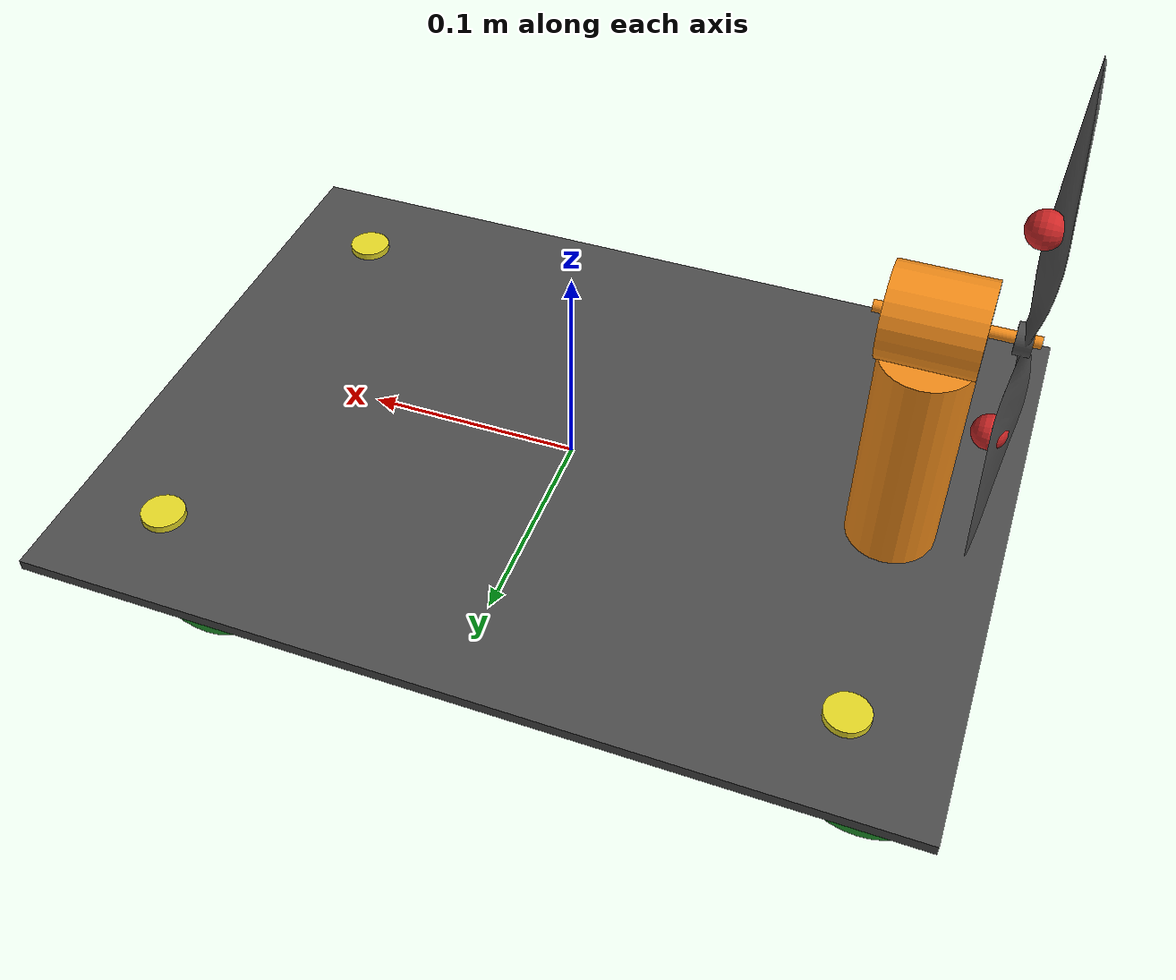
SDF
<sdf version='1.7'>
<model name='fan_car_ardupilot'>

    <include>
        <pose>0 0 0 0 0 0</pose>
        <uri>model://fan_car</uri>
    </include>

    <!--  Using values from iris_with_standoffs_demo -->
    <plugin name="prop_blade_1_liftdrag" filename="libLiftDragPlugin.so">
        <a0>0.3</a0>
        <alpha_stall>1.4</alpha_stall>
        <cla>4.2500</cla>
        <cda>0.10</cda>
        <cma>0.00</cma>
        <cla_stall>-0.025</cla_stall>
        <cda_stall>0.0</cda_stall>
        <cma_stall>0.0</cma_stall>
        <area>0.002</area>
        <air_density>1.2041</air_density>
        <cp>0.084 0 0</cp>
        <forward>0 1 0</forward>
        <upward>0 0 1</upward>
        <link_name>fan_car_ardupilot::fan_car::back_motor_link</link_name>
    </plugin>
    <plugin name="prop_blade_2_liftdrag" filename="libLiftDragPlugin.so">
        <a0>0.3</a0>
        <alpha_stall>1.4</alpha_stall>
        <cla>4.2500</cla>
        <cda>0.10</cda>
        <cma>0.00</cma>
        <cla_stall>-0.025</cla_stall>
        <cda_stall>0.0</cda_stall>
        <cma_stall>0.0</cma_stall>
        <area>0.002</area>
        <air_density>1.2041</air_density>
        <cp>-0.084 0 0</cp>
        <forward>0 -1 0</forward>
        <upward>0 0 1</upward>
        <link_name>fan_car_ardupilot::fan_car::back_motor_link</link_name>
    </plugin>

    <plugin name="ardupilot_plugin" filename="libArduPilotPlugin.so">
        <fdm_addr>127.0.0.1</fdm_addr>
        <fdm_port_in>9002</fdm_port_in>
        <connectionTimeoutMaxCount>5</connectionTimeoutMaxCount>
        <modelXYZToAirplaneXForwardZDown>0 0 0 3.141593 0 0</modelXYZToAirplaneXForwardZDown>
        <gazeboXYZToNED>0 0 0 3.141593 0 0</gazeboXYZToNED>
        <imuName>fan_car_ardupilot::imu_link::imu_sensor</imuName>

        <!-- Control / channels -->

        <!--
            SERVO1_FUNCTION 26 (Ground Steering)
            SERVO1_MIN      1000
            SERVO1_MAX      2000
            SERVO1_TRIM     1500
        -->
        <control channel="0">
            <jointName>fan_car_ardupilot::fan_car::back_steer_rotor_joint</jointName>
            <useForce>1</useForce>
            <multiplier>3.141592653</multiplier>
            <offset>-0.5</offset>
            <servo_min>1000</servo_min>
            <servo_max>2000</servo_max>
            <type>POSITION</type>
            <p_gain>10</p_gain>
            <i_gain>0.1</i_gain>
            <d_gain>0.02</d_gain>
            <i_max>1</i_max>
            <i_min>-1</i_min>
            <cmd_max>100.0</cmd_max>
            <cmd_min>-100.0</cmd_min>
        </control>

        <!--
            SERVO3_FUNCTION 70 (Throttle)
            SERVO3_MIN      1000
            SERVO3_MAX      2000
            SERVO3_TRIM     1000
        -->
        <control channel="2">
            <jointName>fan_car_ardupilot::fan_car::back_motor_joint</jointName>
            <useForce>1</useForce>
            <multiplier>-800</multiplier>
            <offset>0</offset>
            <servo_min>1000</servo_min>
            <servo_max>2000</servo_max>
            <type>VELOCITY</type>
            <p_gain>0.007</p_gain>
            <i_gain>0.005</i_gain>
            <d_gain>0.0</d_gain>
            <i_max>0.1</i_max>
            <i_min>-0.1</i_min>
            <cmd_max>10.0</cmd_max>
            <cmd_min>-10.0</cmd_min>
        </control>
    </plugin>

    <link name='imu_link'>
        <inertial>
            <mass>0.01</mass>
            <inertia>
                <ixx>1.66667E-07</ixx>
                <ixy>0</ixy>
                <ixz>0</ixz>
                <iyy>1.66667E-07</iyy>
                <iyz>0</iyz>
                <izz>1.66667E-07</izz>
            </inertia>
        </inertial>
        <sensor name="imu_sensor" type="imu">
            <pose>0 0 0 3.141593 0 0</pose>
            <always_on>1</always_on>
            <update_rate>1000.0</update_rate>
        </sensor>
    </link>

    <joint name='imu_joint' type='revolute'>
        <child>imu_link</child>
        <parent>fan_car_ardupilot::fan_car::base_link</parent>
        <axis>
            <xyz>0 0 1</xyz>
            <limit>
                <lower>0</lower>
                <upper>0</upper>
            </limit>
        </axis>
    </joint>

</model>
</sdf>

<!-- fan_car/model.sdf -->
<sdf version='1.7'>
  <model name='fan_car'>
    <link name='base_link'>
      <inertial>
        <pose>0 0 0 0 -0 0</pose>
        <mass>1.25</mass>
        <inertia>
          <ixx>0.0093776</ixx>
          <ixy>0</ixy>
          <ixz>0</ixz>
          <iyy>0.0166693</iyy>
          <iyz>0</iyz>
          <izz>0.0260417</izz>
        </inertia>
      </inertial>
      <collision name='base_link_collision'>
        <pose>0 0 0 0 -0 0</pose>
        <geometry>
          <box>
            <size>0.4 0.3 0.005</size>
          </box>
        </geometry>
        <surface>
          <friction>
            <ode>
              <mu>1</mu>
              <mu2>1</mu2>
            </ode>
          </friction>
          <contact>
            <ode/>
          </contact>
        </surface>
      </collision>
      <visual name='base_link_visual'>
        <pose>0 0 0 0 -0 0</pose>
        <geometry>
          <box>
            <size>0.4 0.3 0.005</size>
          </box>
        </geometry>
        <material>
          <script>
            <name>Gazebo/DarkGray</name>
            <uri>file://media/materials/scripts/gazebo.material</uri>
          </script>
        </material>
      </visual>
      <gravity>1</gravity>
      <velocity_decay/>
    </link>
    <joint name='back_left_castor_joint' type='revolute'>
      <pose relative_to='base_link'>-0.155 0.105 0 0 -0 0</pose>
      <parent>base_link</parent>
      <child>back_left_castor_link</child>
      <axis>
        <xyz>0 0 1</xyz>
        <limit>
          <lower>-1e+16</lower>
          <upper>1e+16</upper>
        </limit>
        <dynamics>
          <damping>0.0001</damping>
          <friction>0.0001</friction>
          <spring_reference>0</spring_reference>
          <spring_stiffness>0</spring_stiffness>
        </dynamics>
      </axis>
      <physics>
        <ode>
          <limit>
            <cfm>0</cfm>
            <erp>0.2</erp>
          </limit>
        </ode>
      </physics>
    </joint>
    <link name='back_left_castor_link'>
      <pose relative_to='back_left_castor_joint'>0 0 0 0 -0 0</pose>
      <inertial>
        <pose>0 0 0 0 -0 0</pose>
        <mass>0.05</mass>
        <inertia>
          <ixx>1.85e-06</ixx>
          <ixy>0</ixy>
          <ixz>0</ixz>
          <iyy>1.85e-06</iyy>
          <iyz>0</iyz>
          <izz>2.5e-06</izz>
        </inertia>
      </inertial>
      <collision name='back_left_castor_link_collision'>
        <pose>0 0 0 0 -0 0</pose>
        <geometry>
          <cylinder>
            <length>0.012</length>
            <radius>0.01</radius>
          </cylinder>
        </geometry>
        <surface>
          <friction>
            <ode>
              <mu>1</mu>
              <mu2>1</mu2>
            </ode>
          </friction>
          <contact>
            <ode/>
          </contact>
        </surface>
      </collision>
      <visual name='back_left_castor_link_visual'>
        <pose>0 0 0 0 -0 0</pose>
        <geometry>
          <cylinder>
            <length>0.012</length>
            <radius>0.01</radius>
          </cylinder>
        </geometry>
        <material>
          <script>
            <name>Gazebo/Yellow</name>
            <uri>file://media/materials/scripts/gazebo.material</uri>
          </script>
        </material>
      </visual>
      <gravity>1</gravity>
      <velocity_decay/>
    </link>
    <joint name='back_left_wheel_joint' type='revolute'>
      <pose relative_to='back_left_castor_link'>-0.015 0 -0.037 -1.5708 0 0</pose>
      <parent>back_left_castor_link</parent>
      <child>back_left_castor_wheel_link</child>
      <axis>
        <xyz>0 0 1</xyz>
        <limit>
          <lower>-1e+16</lower>
          <upper>1e+16</upper>
        </limit>
        <dynamics>
          <damping>0.0001</damping>
          <friction>0.03</friction>
          <spring_reference>0</spring_reference>
          <spring_stiffness>0</spring_stiffness>
        </dynamics>
      </axis>
      <physics>
        <ode>
          <limit>
            <cfm>0</cfm>
            <erp>0.2</erp>
          </limit>
        </ode>
      </physics>
    </joint>
    <link name='back_left_castor_wheel_link'>
      <pose relative_to='back_left_wheel_joint'>0 0 0 0 -0 0</pose>
      <inertial>
        <pose>0 0 0 0 -0 0</pose>
        <mass>0.05</mass>
        <inertia>
          <ixx>9.47917e-06</ixx>
          <ixy>0</ixy>
          <ixz>0</ixz>
          <iyy>9.47917e-06</iyy>
          <iyz>0</iyz>
          <izz>1.5625e-05</izz>
        </inertia>
      </inertial>
      <collision name='back_left_castor_wheel_link_collision'>
        <pose>0 0 0 0 -0 0</pose>
        <geometry>
          <cylinder>
            <length>0.02</length>
            <radius>0.025</radius>
          </cylinder>
        </geometry>
        <surface>
          <friction>
            <ode>
              <mu>1</mu>
              <mu2>1</mu2>
            </ode>
          </friction>
          <contact>
            <ode/>
          </contact>
        </surface>
      </collision>
      <visual name='back_left_castor_wheel_link_visual'>
        <pose>0 0 0 0 -0 0</pose>
        <geometry>
          <cylinder>
            <length>0.02</length>
            <radius>0.025</radius>
          </cylinder>
        </geometry>
        <material>
          <script>
            <name>Gazebo/Green</name>
            <uri>file://media/materials/scripts/gazebo.material</uri>
          </script>
        </material>
      </visual>
      <gravity>1</gravity>
      <velocity_decay/>
    </link>
    <joint name='back_right_castor_joint' type='revolute'>
      <pose relative_to='base_link'>-0.155 -0.105 0 0 -0 0</pose>
      <parent>base_link</parent>
      <child>back_right_castor_link</child>
      <axis>
        <xyz>0 0 1</xyz>
        <limit>
          <lower>-1e+16</lower>
          <upper>1e+16</upper>
        </limit>
        <dynamics>
          <damping>0.0001</damping>
          <friction>0.0001</friction>
          <spring_reference>0</spring_reference>
          <spring_stiffness>0</spring_stiffness>
        </dynamics>
      </axis>
      <physics>
        <ode>
          <limit>
            <cfm>0</cfm>
            <erp>0.2</erp>
          </limit>
        </ode>
      </physics>
    </joint>
    <link name='back_right_castor_link'>
      <pose relative_to='back_right_castor_joint'>0 0 0 0 -0 0</pose>
      <inertial>
        <pose>0 0 0 0 -0 0</pose>
        <mass>0.05</mass>
        <inertia>
          <ixx>1.85e-06</ixx>
          <ixy>0</ixy>
          <ixz>0</ixz>
          <iyy>1.85e-06</iyy>
          <iyz>0</iyz>
          <izz>2.5e-06</izz>
        </inertia>
      </inertial>
      <collision name='back_right_castor_link_collision'>
        <pose>0 0 0 0 -0 0</pose>
        <geometry>
          <cylinder>
            <length>0.012</length>
            <radius>0.01</radius>
          </cylinder>
        </geometry>
        <surface>
          <friction>
            <ode>
              <mu>1</mu>
              <mu2>1</mu2>
            </ode>
          </friction>
          <contact>
            <ode/>
          </contact>
        </surface>
      </collision>
      <visual name='back_right_castor_link_visual'>
        <pose>0 0 0 0 -0 0</pose>
        <geometry>
          <cylinder>
            <length>0.012</length>
            <radius>0.01</radius>
          </cylinder>
        </geometry>
        <material>
          <script>
            <name>Gazebo/Yellow</name>
            <uri>file://media/materials/scripts/gazebo.material</uri>
          </script>
        </material>
      </visual>
      <gravity>1</gravity>
      <velocity_decay/>
    </link>
    <joint name='back_right_wheel_joint' type='revolute'>
      <pose relative_to='back_right_castor_link'>-0.015 0 -0.037 -1.5708 0 0</pose>
      <parent>back_right_castor_link</parent>
      <child>back_right_castor_wheel_link</child>
      <axis>
        <xyz>0 0 1</xyz>
        <limit>
          <lower>-1e+16</lower>
          <upper>1e+16</upper>
        </limit>
        <dynamics>
          <damping>0.0001</damping>
          <friction>0.03</friction>
          <spring_reference>0</spring_reference>
          <spring_stiffness>0</spring_stiffness>
        </dynamics>
      </axis>
      <physics>
        <ode>
          <limit>
            <cfm>0</cfm>
            <erp>0.2</erp>
          </limit>
        </ode>
      </physics>
    </joint>
    <link name='back_right_castor_wheel_link'>
      <pose relative_to='back_right_wheel_joint'>0 0 0 0 -0 0</pose>
      <inertial>
        <pose>0 0 0 0 -0 0</pose>
        <mass>0.05</mass>
        <inertia>
          <ixx>9.47917e-06</ixx>
          <ixy>0</ixy>
          <ixz>0</ixz>
          <iyy>9.47917e-06</iyy>
          <iyz>0</iyz>
          <izz>1.5625e-05</izz>
        </inertia>
      </inertial>
      <collision name='back_right_castor_wheel_link_collision'>
        <pose>0 0 0 0 -0 0</pose>
        <geometry>
          <cylinder>
            <length>0.02</length>
            <radius>0.025</radius>
          </cylinder>
        </geometry>
        <surface>
          <friction>
            <ode>
              <mu>1</mu>
              <mu2>1</mu2>
            </ode>
          </friction>
          <contact>
            <ode/>
          </contact>
        </surface>
      </collision>
      <visual name='back_right_castor_wheel_link_visual'>
        <pose>0 0 0 0 -0 0</pose>
        <geometry>
          <cylinder>
            <length>0.02</length>
            <radius>0.025</radius>
          </cylinder>
        </geometry>
        <material>
          <script>
            <name>Gazebo/Green</name>
            <uri>file://media/materials/scripts/gazebo.material</uri>
          </script>
        </material>
      </visual>
      <gravity>1</gravity>
      <velocity_decay/>
    </link>
    <joint name='back_steer_rotor_joint' type='revolute'>
      <pose relative_to='base_link'>-0.15 0 0.0525 0 -0 0</pose>
      <parent>base_link</parent>
      <child>back_steer_rotor_link</child>
      <axis>
        <xyz>0 0 1</xyz>
        <limit>
          <lower>-3.14159</lower>
          <upper>3.14159</upper>
          <effort>50</effort>
          <velocity>5</velocity>
        </limit>
        <dynamics>
          <damping>0.0001</damping>
          <friction>0.0001</friction>
          <spring_reference>0</spring_reference>
          <spring_stiffness>0</spring_stiffness>
        </dynamics>
      </axis>
      <physics>
        <ode>
          <limit>
            <cfm>0</cfm>
            <erp>0.2</erp>
          </limit>
        </ode>
      </physics>
    </joint>
    <link name='back_steer_rotor_link'>
      <pose relative_to='back_steer_rotor_joint'>0 0 0 0 -0 0</pose>
      <inertial>
        <pose>0 0 0 0 -0 0</pose>
        <mass>0.1</mass>
        <inertia>
          <ixx>9.33333e-05</ixx>
          <ixy>0</ixy>
          <ixz>0</ixz>
          <iyy>9.33333e-05</iyy>
          <iyz>0</iyz>
          <izz>2e-05</izz>
        </inertia>
      </inertial>
      <collision name='back_steer_rotor_link_collision'>
        <pose>0 0 0 0 -0 0</pose>
        <geometry>
          <cylinder>
            <length>0.1</length>
            <radius>0.02</radius>
          </cylinder>
        </geometry>
        <surface>
          <friction>
            <ode>
              <mu>1</mu>
              <mu2>1</mu2>
            </ode>
          </friction>
          <contact>
            <ode/>
          </contact>
        </surface>
      </collision>
      <visual name='back_steer_rotor_link_visual'>
        <pose>0 0 0 0 -0 0</pose>
        <geometry>
          <cylinder>
            <length>0.1</length>
            <radius>0.02</radius>
          </cylinder>
        </geometry>
        <material>
          <script>
            <name>Gazebo/Orange</name>
            <uri>file://media/materials/scripts/gazebo.material</uri>
          </script>
        </material>
      </visual>
      <gravity>1</gravity>
      <velocity_decay/>
    </link>
    <joint name='back_motor_joint' type='revolute'>
      <pose relative_to='back_steer_rotor_link'>0 0 0.07 0 -1.5708 0</pose>
      <parent>back_steer_rotor_link</parent>
      <child>back_motor_link</child>
      <axis>
        <xyz>0 0 1</xyz>
        <limit>
          <lower>-1e+16</lower>
          <upper>1e+16</upper>
        </limit>
        <dynamics>
          <damping>0.0001</damping>
          <friction>0.0001</friction>
          <spring_reference>0</spring_reference>
          <spring_stiffness>0</spring_stiffness>
        </dynamics>
      </axis>
      <physics>
        <ode>
          <limit>
            <cfm>0</cfm>
            <erp>0.2</erp>
          </limit>
        </ode>
      </physics>
      <sensor name='force_torque_sensor' type='force_torque'>
        <always_on>1</always_on>
        <update_rate>30</update_rate>
        <visualize>1</visualize>
      </sensor>
    </joint>
    <link name='back_motor_link'>
      <pose relative_to='back_motor_joint'>0 0 0 0 -0 0</pose>
      <inertial>
        <pose>0 0 0.004286 0 -0 0</pose>
        <mass>0.07</mass>
        <inertia>
          <ixx>2.18393e-05</ixx>
          <ixy>0</ixy>
          <ixz>-2.03725e-21</ixz>
          <iyy>5.51101e-05</iyy>
          <iyz>0</iyz>
          <izz>4.53958e-05</izz>
        </inertia>
      </inertial>
      <collision name='back_motor_link_collision'>
        <pose>0 0 0 0 -0 0</pose>
        <geometry>
          <cylinder>
            <length>0.04</length>
            <radius>0.02</radius>
          </cylinder>
        </geometry>
        <surface>
          <friction>
            <ode>
              <mu>1</mu>
              <mu2>1</mu2>
            </ode>
          </friction>
          <contact>
            <ode/>
          </contact>
        </surface>
      </collision>
      <collision name='back_motor_link_fixed_joint_lump__back_prop_link_collision_1'>
        <pose>0 0 0.03 0 1.5708 0</pose>
        <geometry>
          <cylinder>
            <length>0.2</length>
            <radius>0.005</radius>
          </cylinder>
        </geometry>
        <surface>
          <friction>
            <ode>
              <mu>1</mu>
              <mu2>1</mu2>
            </ode>
          </friction>
          <contact>
            <ode/>
          </contact>
        </surface>
      </collision>
      <visual name='back_motor_link_visual'>
        <pose>0 0 0 0 -0 0</pose>
        <geometry>
          <cylinder>
            <length>0.04</length>
            <radius>0.02</radius>
          </cylinder>
        </geometry>
        <material>
          <script>
            <name>Gazebo/Orange</name>
            <uri>file://media/materials/scripts/gazebo.material</uri>
          </script>
        </material>
      </visual>
      <visual name='back_motor_link_fixed_joint_lump__back_motor_axle_link_visual_1'>
        <pose>0 0 0.0075 0 -0 0</pose>
        <geometry>
          <cylinder>
            <length>0.065</length>
            <radius>0.0025</radius>
          </cylinder>
        </geometry>
        <material>
          <script>
            <name>Gazebo/Orange</name>
            <uri>file://media/materials/scripts/gazebo.material</uri>
          </script>
        </material>
      </visual>
      <visual name='back_motor_link_fixed_joint_lump__back_prop_link_visual_2'>
        <pose>0 0 0.03 0 -0 0.174533</pose>
        <geometry>
          <mesh>
            <scale>1 1 1</scale>
            <uri>model://fan_car/meshes/propeller_9x4.7.stl</uri>
          </mesh>
        </geometry>
        <material>
          <script>
            <name>Gazebo/DarkGray</name>
            <uri>file://media/materials/scripts/gazebo.material</uri>
          </script>
        </material>
      </visual>
      <visual name='back_motor_link_fixed_joint_lump__back_prop_cp1_link_visual_3'>
        <pose>0.05 0 0.03 0 -0 0</pose>
        <geometry>
          <sphere>
            <radius>0.0075</radius>
          </sphere>
        </geometry>
        <material>
          <script>
            <name>Gazebo/Red</name>
            <uri>file://media/materials/scripts/gazebo.material</uri>
          </script>
        </material>
      </visual>
      <visual name='back_motor_link_fixed_joint_lump__back_prop_cp2_link_visual_4'>
        <pose>-0.05 0 0.03 0 -0 0</pose>
        <geometry>
          <sphere>
            <radius>0.0075</radius>
          </sphere>
        </geometry>
        <material>
          <script>
            <name>Gazebo/Red</name>
            <uri>file://media/materials/scripts/gazebo.material</uri>
          </script>
        </material>
      </visual>
      <velocity_decay/>
      <velocity_decay/>
      <velocity_decay/>
      <velocity_decay/>
      <gravity>1</gravity>
      <velocity_decay/>
    </link>
    <joint name='front_left_castor_joint' type='revolute'>
      <pose relative_to='base_link'>0.155 0.105 0 0 -0 0</pose>
      <parent>base_link</parent>
      <child>front_left_castor_link</child>
      <axis>
        <xyz>0 0 1</xyz>
        <limit>
          <lower>-1e+16</lower>
          <upper>1e+16</upper>
        </limit>
        <dynamics>
          <damping>0.0001</damping>
          <friction>0.0001</friction>
          <spring_reference>0</spring_reference>
          <spring_stiffness>0</spring_stiffness>
        </dynamics>
      </axis>
      <physics>
        <ode>
          <limit>
            <cfm>0</cfm>
            <erp>0.2</erp>
          </limit>
        </ode>
      </physics>
    </joint>
    <link name='front_left_castor_link'>
      <pose relative_to='front_left_castor_joint'>0 0 0 0 -0 0</pose>
      <inertial>
        <pose>0 0 0 0 -0 0</pose>
        <mass>0.05</mass>
        <inertia>
          <ixx>1.85e-06</ixx>
          <ixy>0</ixy>
          <ixz>0</ixz>
          <iyy>1.85e-06</iyy>
          <iyz>0</iyz>
          <izz>2.5e-06</izz>
        </inertia>
      </inertial>
      <collision name='front_left_castor_link_collision'>
        <pose>0 0 0 0 -0 0</pose>
        <geometry>
          <cylinder>
            <length>0.012</length>
            <radius>0.01</radius>
          </cylinder>
        </geometry>
        <surface>
          <friction>
            <ode>
              <mu>1</mu>
              <mu2>1</mu2>
            </ode>
          </friction>
          <contact>
            <ode/>
          </contact>
        </surface>
      </collision>
      <visual name='front_left_castor_link_visual'>
        <pose>0 0 0 0 -0 0</pose>
        <geometry>
          <cylinder>
            <length>0.012</length>
            <radius>0.01</radius>
          </cylinder>
        </geometry>
        <material>
          <script>
            <name>Gazebo/Yellow</name>
            <uri>file://media/materials/scripts/gazebo.material</uri>
          </script>
        </material>
      </visual>
      <gravity>1</gravity>
      <velocity_decay/>
    </link>
    <joint name='front_left_wheel_joint' type='revolute'>
      <pose relative_to='front_left_castor_link'>-0.015 0 -0.037 -1.5708 0 0</pose>
      <parent>front_left_castor_link</parent>
      <child>front_left_castor_wheel_link</child>
      <axis>
        <xyz>0 0 1</xyz>
        <limit>
          <lower>-1e+16</lower>
          <upper>1e+16</upper>
        </limit>
        <dynamics>
          <damping>0.0001</damping>
          <friction>0.03</friction>
          <spring_reference>0</spring_reference>
          <spring_stiffness>0</spring_stiffness>
        </dynamics>
      </axis>
      <physics>
        <ode>
          <limit>
            <cfm>0</cfm>
            <erp>0.2</erp>
          </limit>
        </ode>
      </physics>
    </joint>
    <link name='front_left_castor_wheel_link'>
      <pose relative_to='front_left_wheel_joint'>0 0 0 0 -0 0</pose>
      <inertial>
        <pose>0 0 0 0 -0 0</pose>
        <mass>0.05</mass>
        <inertia>
          <ixx>9.47917e-06</ixx>
          <ixy>0</ixy>
          <ixz>0</ixz>
          <iyy>9.47917e-06</iyy>
          <iyz>0</iyz>
          <izz>1.5625e-05</izz>
        </inertia>
      </inertial>
      <collision name='front_left_castor_wheel_link_collision'>
        <pose>0 0 0 0 -0 0</pose>
        <geometry>
          <cylinder>
            <length>0.02</length>
            <radius>0.025</radius>
          </cylinder>
        </geometry>
        <surface>
          <friction>
            <ode>
              <mu>1</mu>
              <mu2>1</mu2>
            </ode>
          </friction>
          <contact>
            <ode/>
          </contact>
        </surface>
      </collision>
      <visual name='front_left_castor_wheel_link_visual'>
        <pose>0 0 0 0 -0 0</pose>
        <geometry>
          <cylinder>
            <length>0.02</length>
            <radius>0.025</radius>
          </cylinder>
        </geometry>
        <material>
          <script>
            <name>Gazebo/Green</name>
            <uri>file://media/materials/scripts/gazebo.material</uri>
          </script>
        </material>
      </visual>
      <gravity>1</gravity>
      <velocity_decay/>
    </link>
    <joint name='front_right_castor_joint' type='revolute'>
      <pose relative_to='base_link'>0.155 -0.105 0 0 -0 0</pose>
      <parent>base_link</parent>
      <child>front_right_castor_link</child>
      <axis>
        <xyz>0 0 1</xyz>
        <limit>
          <lower>-1e+16</lower>
          <upper>1e+16</upper>
        </limit>
        <dynamics>
          <damping>0.0001</damping>
          <friction>0.0001</friction>
          <spring_reference>0</spring_reference>
          <spring_stiffness>0</spring_stiffness>
        </dynamics>
      </axis>
      <physics>
        <ode>
          <limit>
            <cfm>0</cfm>
            <erp>0.2</erp>
          </limit>
        </ode>
      </physics>
    </joint>
    <link name='front_right_castor_link'>
      <pose relative_to='front_right_castor_joint'>0 0 0 0 -0 0</pose>
      <inertial>
        <pose>0 0 0 0 -0 0</pose>
        <mass>0.05</mass>
        <inertia>
          <ixx>1.85e-06</ixx>
          <ixy>0</ixy>
          <ixz>0</ixz>
          <iyy>1.85e-06</iyy>
          <iyz>0</iyz>
          <izz>2.5e-06</izz>
        </inertia>
      </inertial>
      <collision name='front_right_castor_link_collision'>
        <pose>0 0 0 0 -0 0</pose>
        <geometry>
          <cylinder>
            <length>0.012</length>
            <radius>0.01</radius>
          </cylinder>
        </geometry>
        <surface>
          <friction>
            <ode>
              <mu>1</mu>
              <mu2>1</mu2>
            </ode>
          </friction>
          <contact>
            <ode/>
          </contact>
        </surface>
      </collision>
      <visual name='front_right_castor_link_visual'>
        <pose>0 0 0 0 -0 0</pose>
        <geometry>
          <cylinder>
            <length>0.012</length>
            <radius>0.01</radius>
          </cylinder>
        </geometry>
        <material>
          <script>
            <name>Gazebo/Yellow</name>
            <uri>file://media/materials/scripts/gazebo.material</uri>
          </script>
        </material>
      </visual>
      <gravity>1</gravity>
      <velocity_decay/>
    </link>
    <joint name='front_right_wheel_joint' type='revolute'>
      <pose relative_to='front_right_castor_link'>-0.015 0 -0.037 -1.5708 0 0</pose>
      <parent>front_right_castor_link</parent>
      <child>front_right_castor_wheel_link</child>
      <axis>
        <xyz>0 0 1</xyz>
        <limit>
          <lower>-1e+16</lower>
          <upper>1e+16</upper>
        </limit>
        <dynamics>
          <damping>0.0001</damping>
          <friction>0.03</friction>
          <spring_reference>0</spring_reference>
          <spring_stiffness>0</spring_stiffness>
        </dynamics>
      </axis>
      <physics>
        <ode>
          <limit>
            <cfm>0</cfm>
            <erp>0.2</erp>
          </limit>
        </ode>
      </physics>
    </joint>
    <link name='front_right_castor_wheel_link'>
      <pose relative_to='front_right_wheel_joint'>0 0 0 0 -0 0</pose>
      <inertial>
        <pose>0 0 0 0 -0 0</pose>
        <mass>0.05</mass>
        <inertia>
          <ixx>9.47917e-06</ixx>
          <ixy>0</ixy>
          <ixz>0</ixz>
          <iyy>9.47917e-06</iyy>
          <iyz>0</iyz>
          <izz>1.5625e-05</izz>
        </inertia>
      </inertial>
      <collision name='front_right_castor_wheel_link_collision'>
        <pose>0 0 0 0 -0 0</pose>
        <geometry>
          <cylinder>
            <length>0.02</length>
            <radius>0.025</radius>
          </cylinder>
        </geometry>
        <surface>
          <friction>
            <ode>
              <mu>1</mu>
              <mu2>1</mu2>
            </ode>
          </friction>
          <contact>
            <ode/>
          </contact>
        </surface>
      </collision>
      <visual name='front_right_castor_wheel_link_visual'>
        <pose>0 0 0 0 -0 0</pose>
        <geometry>
          <cylinder>
            <length>0.02</length>
            <radius>0.025</radius>
          </cylinder>
        </geometry>
        <material>
          <script>
            <name>Gazebo/Green</name>
            <uri>file://media/materials/scripts/gazebo.material</uri>
          </script>
        </material>
      </visual>
      <gravity>1</gravity>
      <velocity_decay/>
    </link>
  </model>
</sdf>
